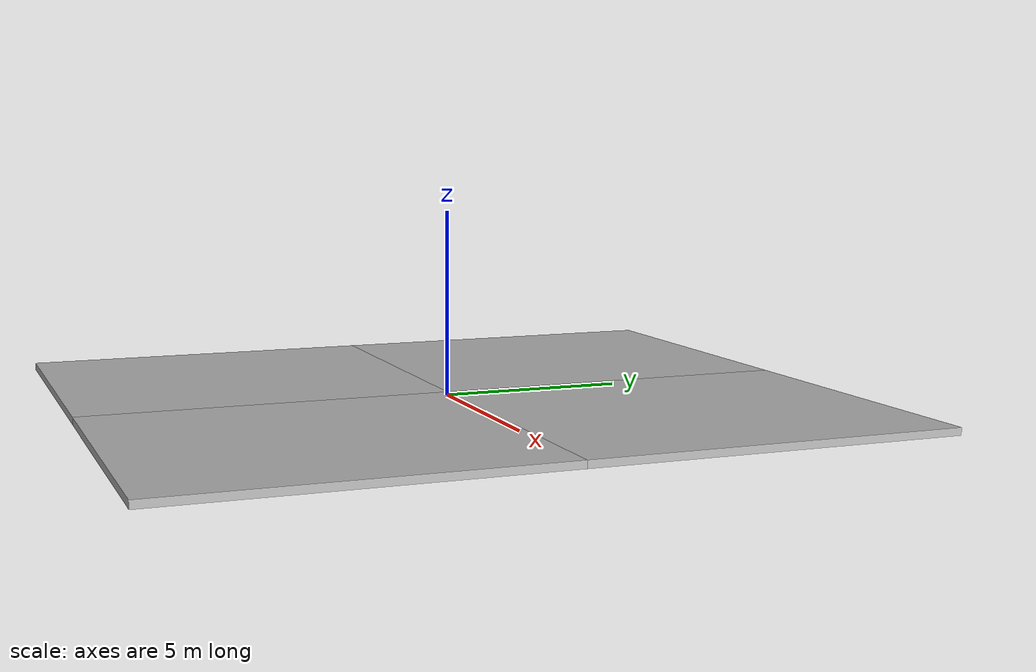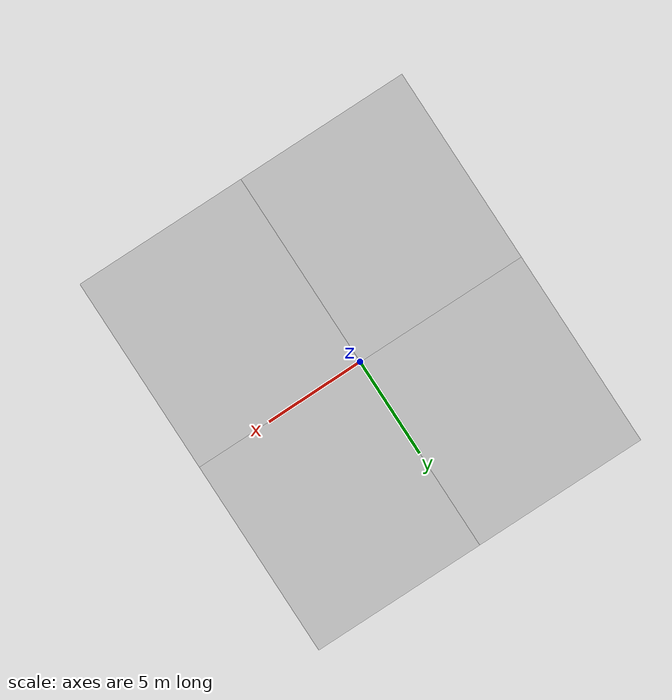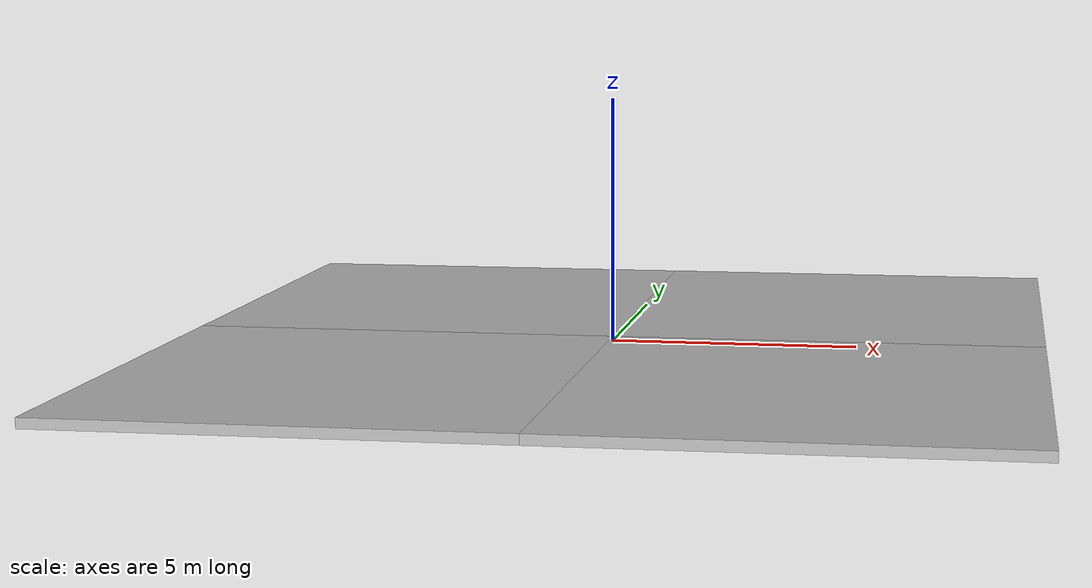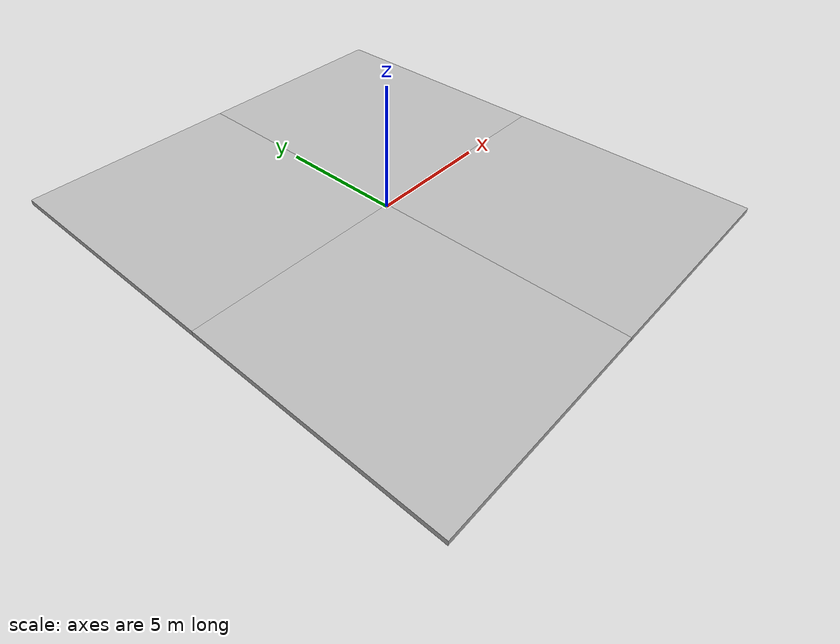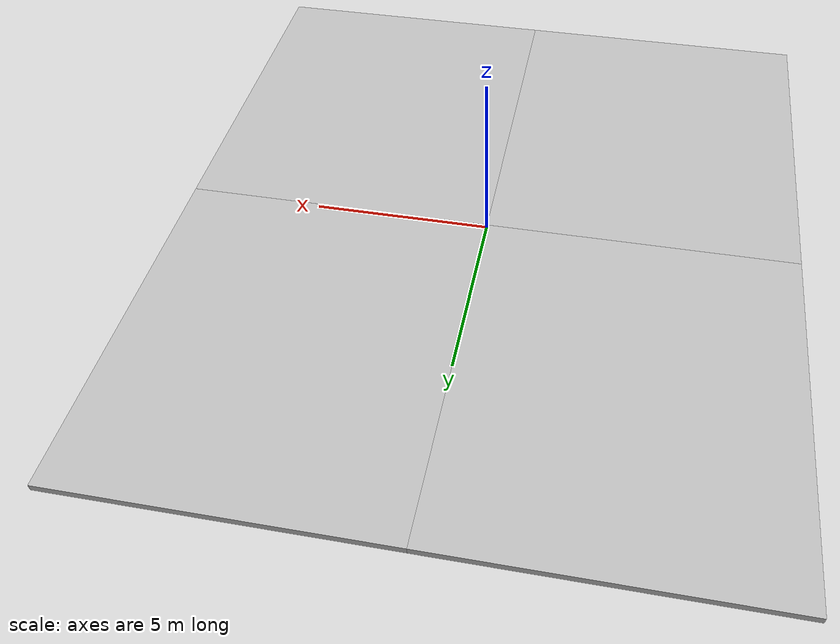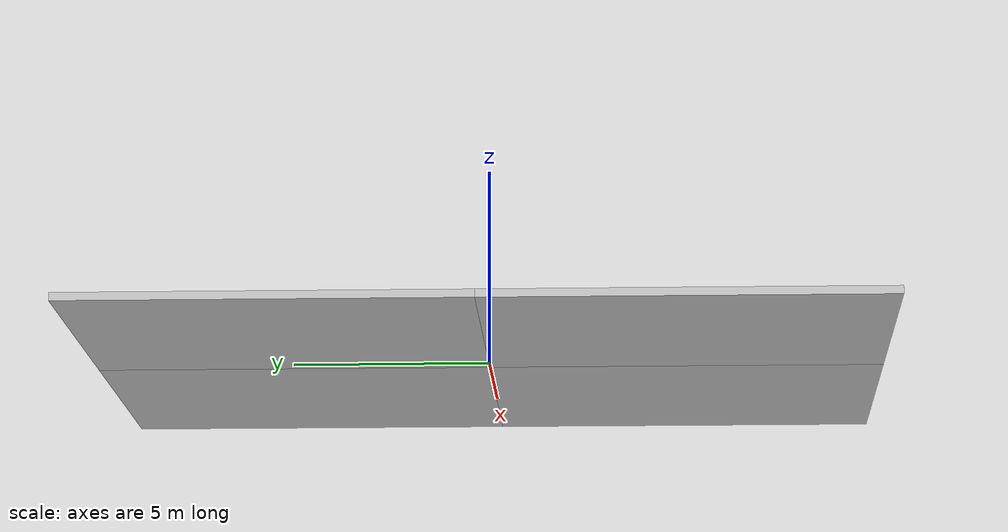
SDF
<?xml version="1.0" ?>
<sdf version="1.5">
  <model name="mud">
    <static>true</static>
    <link name="link">
      <collision name="collision">
        <geometry>
          <box>
            <size>17.6 20 0.2</size>
          </box>
        </geometry>
      </collision>
      <visual name="visual_1">
        <pose>-4.4 5 0 0 0 0</pose>
        <cast_shadows>false</cast_shadows>
        <geometry>
          <box>
            <size>8.8 10 0.2</size>
          </box>
        </geometry>
        <material>
          <script>
            <uri>model://mud_box/materials/scripts</uri>
            <uri>model://mud_box/materials/textures</uri>
            <name>vrc/mud</name>
          </script>
        </material>
      </visual>
      <visual name="visual_2">
        <pose>4.4 5 0 0 0 0</pose>
        <cast_shadows>false</cast_shadows>
        <geometry>
          <box>
            <size>8.8 10 0.2</size>
          </box>
        </geometry>
        <material>
          <script>
            <uri>model://mud_box/materials/scripts</uri>
            <uri>model://mud_box/materials/textures</uri>
            <name>vrc/mud</name>
          </script>
        </material>
      </visual>
      <visual name="visual_3">
        <pose>4.4 -5 0 0 0 0</pose>
        <cast_shadows>false</cast_shadows>
        <geometry>
          <box>
            <size>8.8 10 0.2</size>
          </box>
        </geometry>
        <material>
          <script>
            <uri>model://mud_box/materials/scripts</uri>
            <uri>model://mud_box/materials/textures</uri>
            <name>vrc/mud</name>
          </script>
        </material>
      </visual>
      <visual name="visual_4">
        <pose>-4.4 -5 0 0 0 0</pose>
        <cast_shadows>false</cast_shadows>
        <geometry>
          <box>
            <size>8.8 10 0.2</size>
          </box>
        </geometry>
        <material>
          <script>
            <uri>model://mud_box/materials/scripts</uri>
            <uri>model://mud_box/materials/textures</uri>
            <name>vrc/mud</name>
          </script>
        </material>
      </visual>
    </link>
  </model>
</sdf>
